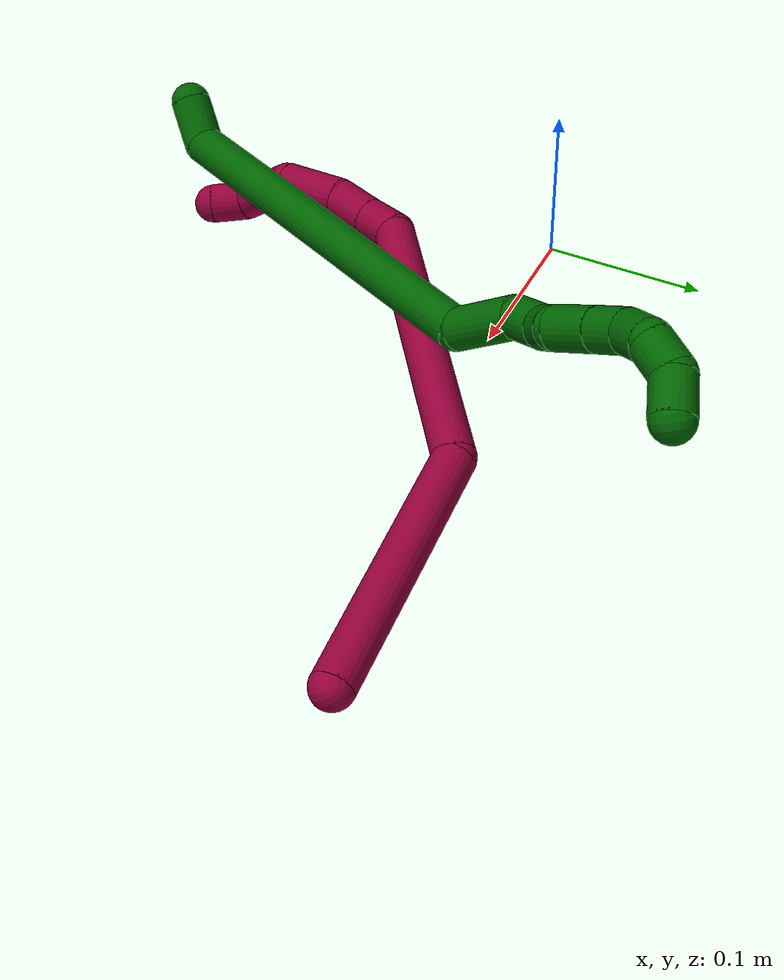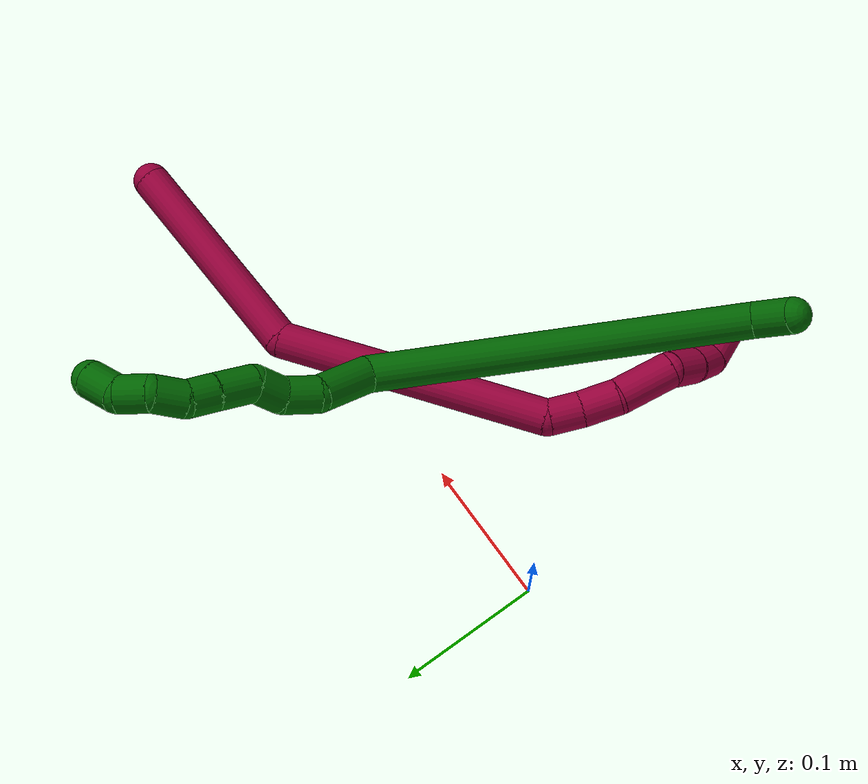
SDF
<sdf version="1.7">
 <world name="default">
  <model name="photoneo_s_sensor">
   <static>1</static>
   <pose>0 0 2 1.57079 1.57079 3.14159</pose>
   <link name="link">
    <inertial><mass>0.1</mass></inertial>
    <sensor name="sensor" type="depth">
     <update_rate>30</update_rate>
     <camera>
      <horizontal_fov>1.22</horizontal_fov>
      <image><width>1920</width><height>1200</height><format>B8G8R8</format></image>
      <clip><near>0.1</near><far>4</far></clip>
      <depth_camera><output>points</output></depth_camera>
     </camera>
     <plugin name="camera_plugin" filename="libgazebo_ros_depth_camera.so">
      <baseline>0.2</baseline>
      <alwaysOn>1</alwaysOn>
      <updateRate>0.0</updateRate>
      <cameraName>camera_ir</cameraName>
      <imageTopicName>/camera/color/image_raw</imageTopicName>
      <cameraInfoTopicName>/camera/color/camera_info</cameraInfoTopicName>
      <depthImageTopicName>/camera/depth/image_raw</depthImageTopicName>
      <depthImageCameraInfoTopicName>/camera/depth/camera_info</depthImageCameraInfoTopicName>
      <pointCloudTopicName>/camera/depth/points</pointCloudTopicName>
      <frameName>fr_optical</frameName>
      <pointCloudCutoff>0.1</pointCloudCutoff>
      <pointCloudCutoffMax>2.0</pointCloudCutoffMax>
      <distortionK1>0</distortionK1>
      <distortionK2>0</distortionK2>
      <distortionK3>0</distortionK3>
      <distortionT1>0</distortionT1>
      <distortionT2>0</distortionT2>
      <CxPrime>0</CxPrime>
      <Cx>0</Cx>
      <Cy>0</Cy>
      <focalLength>0</focalLength>
      <hackBaseline>0</hackBaseline>
     </plugin>
    </sensor>
   </link>
  </model>
  <model name="bin">
   <static>1</static>
   <link name="bottom">
    <collision name="collision-bottom">
     <pose>0 0 -0.01 0 -0 0</pose>
     <geometry><box><size>0.8 0.6 0.02</size></box></geometry>
     <surface>
      <friction><ode><mu>100</mu><mu2>100</mu2></ode></friction>
      <contact><collide_bitmask>65535</collide_bitmask></contact>
     </surface>
    </collision>
   </link>
   <link name="west_wall">
    <collision name="collision-west_wall">
     <pose>-0.41 0 0.1 0 -0 0</pose>
     <geometry><box><size>0.02 0.6 0.2</size></box></geometry>
     <surface>
      <friction><ode><mu>100</mu><mu2>100</mu2></ode></friction>
      <contact><collide_bitmask>65535</collide_bitmask></contact>
     </surface>
    </collision>
   </link>
   <link name="east_wall">
    <collision name="collision-east_wall">
     <pose>0.41 0 0.1 0 -0 0</pose>
     <geometry><box><size>0.02 0.6 0.2</size></box></geometry>
     <surface>
      <friction><ode><mu>100</mu><mu2>100</mu2></ode></friction>
      <contact><collide_bitmask>65535</collide_bitmask></contact>
     </surface>
    </collision>
   </link>
   <link name="south_wall">
    <collision name="collision-south_wall">
     <pose>0 -0.31 0.1 0 -0 0</pose>
     <geometry><box><size>0.8 0.02 0.2</size></box></geometry>
     <surface>
      <friction><ode><mu>100</mu><mu2>100</mu2></ode></friction>
      <contact><collide_bitmask>65535</collide_bitmask></contact>
     </surface>
    </collision>
   </link>
   <link name="north_wall">
    <collision name="collision-north_wall">
     <pose>0 0.31 0.1 0 -0 0</pose>
     <geometry><box><size>0.8 0.02 0.2</size></box></geometry>
     <surface>
      <friction><ode><mu>100</mu><mu2>100</mu2></ode></friction>
      <contact><collide_bitmask>65535</collide_bitmask></contact>
     </surface>
    </collision>
   </link>
  </model>
  <model name="6">
   <static>0</static>
   <link name="6">
    <collision name="collision-cylinder-e_1_1_4">
     <pose>0.001685 0.003509 0.014563 -0.236422 0.11201 -0.013317</pose>
     <geometry><cylinder><radius>0.0125</radius><length>0.030148</length></cylinder></geometry>
     <surface>
      <friction><ode><mu>1.16</mu><mu2>1.16</mu2><slip1>0</slip1><slip2>0</slip2></ode></friction>
      <contact><ode><kp>1e+06</kp><kd>1</kd><max_vel>0</max_vel><min_depth>0.001</min_depth></ode></contact>
     </surface>
    </collision>
    <visual name="visual-cylinder-e_1_1_4">
     <pose>0.001685 0.003509 0.014563 -0.236422 0.11201 -0.013317</pose>
     <geometry><cylinder><radius>0.0125</radius><length>0.030148</length></cylinder></geometry>
     <material><ambient>0 0.392157 0.003922 1</ambient></material>
    </visual>
    <collision name="collision-cylinder-e_2_4_5">
     <pose>0.060223 0.102806 0.09842 -0.944531 0.448237 -0.231836</pose>
     <geometry><cylinder><radius>0.0125</radius><length>0.262371</length></cylinder></geometry>
     <surface>
      <friction><ode><mu>1.16</mu><mu2>1.16</mu2><slip1>0</slip1><slip2>0</slip2></ode></friction>
      <contact><ode><kp>1e+06</kp><kd>1</kd><max_vel>0</max_vel><min_depth>0.001</min_depth></ode></contact>
     </surface>
    </collision>
    <visual name="visual-cylinder-e_2_4_5">
     <pose>0.060223 0.102806 0.09842 -0.944531 0.448237 -0.231836</pose>
     <geometry><cylinder><radius>0.0125</radius><length>0.262371</length></cylinder></geometry>
     <material><ambient>0 0.392157 0.003922 1</ambient></material>
    </visual>
    <collision name="collision-cylinder-e_3_5_6">
     <pose>0.131556 0.214581 0.166495 -1.64702 0.734625 -0.787218</pose>
     <geometry><cylinder><radius>0.0125</radius><length>0.043207</length></cylinder></geometry>
     <surface>
      <friction><ode><mu>1.16</mu><mu2>1.16</mu2><slip1>0</slip1><slip2>0</slip2></ode></friction>
      <contact><ode><kp>1e+06</kp><kd>1</kd><max_vel>0</max_vel><min_depth>0.001</min_depth></ode></contact>
     </surface>
    </collision>
    <visual name="visual-cylinder-e_3_5_6">
     <pose>0.131556 0.214581 0.166495 -1.64702 0.734625 -0.787218</pose>
     <geometry><cylinder><radius>0.0125</radius><length>0.043207</length></cylinder></geometry>
     <material><ambient>0 0.392157 0.003922 1</ambient></material>
    </visual>
    <collision name="collision-cylinder-e_4_6_7">
     <pose>0.150936 0.241343 0.168864 -1.24927 0.407174 -0.295499</pose>
     <geometry><cylinder><radius>0.0125</radius><length>0.024741</length></cylinder></geometry>
     <surface>
      <friction><ode><mu>1.16</mu><mu2>1.16</mu2><slip1>0</slip1><slip2>0</slip2></ode></friction>
      <contact><ode><kp>1e+06</kp><kd>1</kd><max_vel>0</max_vel><min_depth>0.001</min_depth></ode></contact>
     </surface>
    </collision>
    <visual name="visual-cylinder-e_4_6_7">
     <pose>0.150936 0.241343 0.168864 -1.24927 0.407174 -0.295499</pose>
     <geometry><cylinder><radius>0.0125</radius><length>0.024741</length></cylinder></geometry>
     <material><ambient>0 0.392157 0.003922 1</ambient></material>
    </visual>
    <collision name="collision-cylinder-e_5_7_8">
     <pose>0.156507 0.263248 0.172432 -1.57268 0.060305 -0.060418</pose>
     <geometry><cylinder><radius>0.0125</radius><length>0.022297</length></cylinder></geometry>
     <surface>
      <friction><ode><mu>1.16</mu><mu2>1.16</mu2><slip1>0</slip1><slip2>0</slip2></ode></friction>
      <contact><ode><kp>1e+06</kp><kd>1</kd><max_vel>0</max_vel><min_depth>0.001</min_depth></ode></contact>
     </surface>
    </collision>
    <visual name="visual-cylinder-e_5_7_8">
     <pose>0.156507 0.263248 0.172432 -1.57268 0.060305 -0.060418</pose>
     <geometry><cylinder><radius>0.0125</radius><length>0.022297</length></cylinder></geometry>
     <material><ambient>0 0.392157 0.003922 1</ambient></material>
    </visual>
    <collision name="collision-cylinder-e_6_8_9">
     <pose>0.165326 0.285802 0.17401 -1.43178 0.614862 -0.538901</pose>
     <geometry><cylinder><radius>0.0125</radius><length>0.028248</length></cylinder></geometry>
     <surface>
      <friction><ode><mu>1.16</mu><mu2>1.16</mu2><slip1>0</slip1><slip2>0</slip2></ode></friction>
      <contact><ode><kp>1e+06</kp><kd>1</kd><max_vel>0</max_vel><min_depth>0.001</min_depth></ode></contact>
     </surface>
    </collision>
    <visual name="visual-cylinder-e_6_8_9">
     <pose>0.165326 0.285802 0.17401 -1.43178 0.614862 -0.538901</pose>
     <geometry><cylinder><radius>0.0125</radius><length>0.028248</length></cylinder></geometry>
     <material><ambient>0 0.392157 0.003922 1</ambient></material>
    </visual>
    <collision name="collision-cylinder-e_7_9_10">
     <pose>0.179433 0.305337 0.176913 -1.41127 0.627682 -0.53956</pose>
     <geometry><cylinder><radius>0.0125</radius><length>0.020296</length></cylinder></geometry>
     <surface>
      <friction><ode><mu>1.16</mu><mu2>1.16</mu2><slip1>0</slip1><slip2>0</slip2></ode></friction>
      <contact><ode><kp>1e+06</kp><kd>1</kd><max_vel>0</max_vel><min_depth>0.001</min_depth></ode></contact>
     </surface>
    </collision>
    <visual name="visual-cylinder-e_7_9_10">
     <pose>0.179433 0.305337 0.176913 -1.41127 0.627682 -0.53956</pose>
     <geometry><cylinder><radius>0.0125</radius><length>0.020296</length></cylinder></geometry>
     <material><ambient>0 0.392157 0.003922 1</ambient></material>
    </visual>
    <collision name="collision-cylinder-e_8_10_11">
     <pose>0.187856 0.324131 0.181021 -1.31426 0.219405 -0.16955</pose>
     <geometry><cylinder><radius>0.0125</radius><length>0.022635</length></cylinder></geometry>
     <surface>
      <friction><ode><mu>1.16</mu><mu2>1.16</mu2><slip1>0</slip1><slip2>0</slip2></ode></friction>
      <contact><ode><kp>1e+06</kp><kd>1</kd><max_vel>0</max_vel><min_depth>0.001</min_depth></ode></contact>
     </surface>
    </collision>
    <visual name="visual-cylinder-e_8_10_11">
     <pose>0.187856 0.324131 0.181021 -1.31426 0.219405 -0.16955</pose>
     <geometry><cylinder><radius>0.0125</radius><length>0.022635</length></cylinder></geometry>
     <material><ambient>0 0.392157 0.003922 1</ambient></material>
    </visual>
    <collision name="collision-cylinder-e_9_11_12">
     <pose>0.192934 0.341517 0.191939 -0.69019 0.243505 -0.087914</pose>
     <geometry><cylinder><radius>0.0125</radius><length>0.021688</length></cylinder></geometry>
     <surface>
      <friction><ode><mu>1.16</mu><mu2>1.16</mu2><slip1>0</slip1><slip2>0</slip2></ode></friction>
      <contact><ode><kp>1e+06</kp><kd>1</kd><max_vel>0</max_vel><min_depth>0.001</min_depth></ode></contact>
     </surface>
    </collision>
    <visual name="visual-cylinder-e_9_11_12">
     <pose>0.192934 0.341517 0.191939 -0.69019 0.243505 -0.087914</pose>
     <geometry><cylinder><radius>0.0125</radius><length>0.021688</length></cylinder></geometry>
     <material><ambient>0 0.392157 0.003922 1</ambient></material>
    </visual>
    <collision name="collision-cylinder-e_10_12_2">
     <pose>0.19196 0.353702 0.210327 -0.490411 -0.298863 0.075314</pose>
     <geometry><cylinder><radius>0.0125</radius><length>0.02437</length></cylinder></geometry>
     <surface>
      <friction><ode><mu>1.16</mu><mu2>1.16</mu2><slip1>0</slip1><slip2>0</slip2></ode></friction>
      <contact><ode><kp>1e+06</kp><kd>1</kd><max_vel>0</max_vel><min_depth>0.001</min_depth></ode></contact>
     </surface>
    </collision>
    <visual name="visual-cylinder-e_10_12_2">
     <pose>0.19196 0.353702 0.210327 -0.490411 -0.298863 0.075314</pose>
     <geometry><cylinder><radius>0.0125</radius><length>0.02437</length></cylinder></geometry>
     <material><ambient>0 0.392157 0.003922 1</ambient></material>
    </visual>
    <collision name="collision-sphere-2">
     <pose>0.188373 0.359186 0.220599 0 -0 0</pose>
     <geometry><sphere><radius>0.0125</radius></sphere></geometry>
     <surface>
      <friction><ode><mu>1.16</mu><mu2>1.16</mu2><slip1>0</slip1><slip2>0</slip2></ode></friction>
      <contact><ode><kp>1e+06</kp><kd>1</kd><max_vel>0</max_vel><min_depth>0.001</min_depth></ode></contact>
     </surface>
    </collision>
    <visual name="visual-sphere-2">
     <pose>0.188373 0.359186 0.220599 0 -0 0</pose>
     <geometry><sphere><radius>0.0125</radius></sphere></geometry>
     <material><ambient>0 0.392157 0.003922 1</ambient></material>
    </visual>
    <collision name="collision-sphere-12">
     <pose>0.195548 0.348217 0.200054 0 -0 0</pose>
     <geometry><sphere><radius>0.0125</radius></sphere></geometry>
     <surface>
      <friction><ode><mu>1.16</mu><mu2>1.16</mu2><slip1>0</slip1><slip2>0</slip2></ode></friction>
      <contact><ode><kp>1e+06</kp><kd>1</kd><max_vel>0</max_vel><min_depth>0.001</min_depth></ode></contact>
     </surface>
    </collision>
    <visual name="visual-sphere-12">
     <pose>0.195548 0.348217 0.200054 0 -0 0</pose>
     <geometry><sphere><radius>0.0125</radius></sphere></geometry>
     <material><ambient>0 0.392157 0.003922 1</ambient></material>
    </visual>
    <collision name="collision-sphere-11">
     <pose>0.190319 0.334816 0.183824 0 -0 0</pose>
     <geometry><sphere><radius>0.0125</radius></sphere></geometry>
     <surface>
      <friction><ode><mu>1.16</mu><mu2>1.16</mu2><slip1>0</slip1><slip2>0</slip2></ode></friction>
      <contact><ode><kp>1e+06</kp><kd>1</kd><max_vel>0</max_vel><min_depth>0.001</min_depth></ode></contact>
     </surface>
    </collision>
    <visual name="visual-sphere-11">
     <pose>0.190319 0.334816 0.183824 0 -0 0</pose>
     <geometry><sphere><radius>0.0125</radius></sphere></geometry>
     <material><ambient>0 0.392157 0.003922 1</ambient></material>
    </visual>
    <collision name="collision-sphere-10">
     <pose>0.185393 0.313447 0.178218 0 -0 0</pose>
     <geometry><sphere><radius>0.0125</radius></sphere></geometry>
     <surface>
      <friction><ode><mu>1.16</mu><mu2>1.16</mu2><slip1>0</slip1><slip2>0</slip2></ode></friction>
      <contact><ode><kp>1e+06</kp><kd>1</kd><max_vel>0</max_vel><min_depth>0.001</min_depth></ode></contact>
     </surface>
    </collision>
    <visual name="visual-sphere-10">
     <pose>0.185393 0.313447 0.178218 0 -0 0</pose>
     <geometry><sphere><radius>0.0125</radius></sphere></geometry>
     <material><ambient>0 0.392157 0.003922 1</ambient></material>
    </visual>
    <collision name="collision-sphere-9">
     <pose>0.173474 0.297228 0.175609 0 -0 0</pose>
     <geometry><sphere><radius>0.0125</radius></sphere></geometry>
     <surface>
      <friction><ode><mu>1.16</mu><mu2>1.16</mu2><slip1>0</slip1><slip2>0</slip2></ode></friction>
      <contact><ode><kp>1e+06</kp><kd>1</kd><max_vel>0</max_vel><min_depth>0.001</min_depth></ode></contact>
     </surface>
    </collision>
    <visual name="visual-sphere-9">
     <pose>0.173474 0.297228 0.175609 0 -0 0</pose>
     <geometry><sphere><radius>0.0125</radius></sphere></geometry>
     <material><ambient>0 0.392157 0.003922 1</ambient></material>
    </visual>
    <collision name="collision-sphere-4">
     <pose>0.00337 0.007017 0.029126 0 -0 0</pose>
     <geometry><sphere><radius>0.0125</radius></sphere></geometry>
     <surface>
      <friction><ode><mu>1.16</mu><mu2>1.16</mu2><slip1>0</slip1><slip2>0</slip2></ode></friction>
      <contact><ode><kp>1e+06</kp><kd>1</kd><max_vel>0</max_vel><min_depth>0.001</min_depth></ode></contact>
     </surface>
    </collision>
    <visual name="visual-sphere-4">
     <pose>0.00337 0.007017 0.029126 0 -0 0</pose>
     <geometry><sphere><radius>0.0125</radius></sphere></geometry>
     <material><ambient>0 0.392157 0.003922 1</ambient></material>
    </visual>
    <collision name="collision-sphere-1">
     <geometry><sphere><radius>0.0125</radius></sphere></geometry>
     <surface>
      <friction><ode><mu>1.16</mu><mu2>1.16</mu2><slip1>0</slip1><slip2>0</slip2></ode></friction>
      <contact><ode><kp>1e+06</kp><kd>1</kd><max_vel>0</max_vel><min_depth>0.001</min_depth></ode></contact>
     </surface>
    </collision>
    <visual name="visual-sphere-1">
     <geometry><sphere><radius>0.0125</radius></sphere></geometry>
     <material><ambient>0 0.392157 0.003922 1</ambient></material>
    </visual>
    <collision name="collision-sphere-8">
     <pose>0.157179 0.274376 0.172411 0 -0 0</pose>
     <geometry><sphere><radius>0.0125</radius></sphere></geometry>
     <surface>
      <friction><ode><mu>1.16</mu><mu2>1.16</mu2><slip1>0</slip1><slip2>0</slip2></ode></friction>
      <contact><ode><kp>1e+06</kp><kd>1</kd><max_vel>0</max_vel><min_depth>0.001</min_depth></ode></contact>
     </surface>
    </collision>
    <visual name="visual-sphere-8">
     <pose>0.157179 0.274376 0.172411 0 -0 0</pose>
     <geometry><sphere><radius>0.0125</radius></sphere></geometry>
     <material><ambient>0 0.392157 0.003922 1</ambient></material>
    </visual>
    <collision name="collision-sphere-5">
     <pose>0.117075 0.198596 0.167715 0 -0 0</pose>
     <geometry><sphere><radius>0.0125</radius></sphere></geometry>
     <surface>
      <friction><ode><mu>1.16</mu><mu2>1.16</mu2><slip1>0</slip1><slip2>0</slip2></ode></friction>
      <contact><ode><kp>1e+06</kp><kd>1</kd><max_vel>0</max_vel><min_depth>0.001</min_depth></ode></contact>
     </surface>
    </collision>
    <visual name="visual-sphere-5">
     <pose>0.117075 0.198596 0.167715 0 -0 0</pose>
     <geometry><sphere><radius>0.0125</radius></sphere></geometry>
     <material><ambient>0 0.392157 0.003922 1</ambient></material>
    </visual>
    <collision name="collision-sphere-6">
     <pose>0.146037 0.230566 0.165274 0 -0 0</pose>
     <geometry><sphere><radius>0.0125</radius></sphere></geometry>
     <surface>
      <friction><ode><mu>1.16</mu><mu2>1.16</mu2><slip1>0</slip1><slip2>0</slip2></ode></friction>
      <contact><ode><kp>1e+06</kp><kd>1</kd><max_vel>0</max_vel><min_depth>0.001</min_depth></ode></contact>
     </surface>
    </collision>
    <visual name="visual-sphere-6">
     <pose>0.146037 0.230566 0.165274 0 -0 0</pose>
     <geometry><sphere><radius>0.0125</radius></sphere></geometry>
     <material><ambient>0 0.392157 0.003922 1</ambient></material>
    </visual>
    <collision name="collision-sphere-7">
     <pose>0.155835 0.25212 0.172453 0 -0 0</pose>
     <geometry><sphere><radius>0.0125</radius></sphere></geometry>
     <surface>
      <friction><ode><mu>1.16</mu><mu2>1.16</mu2><slip1>0</slip1><slip2>0</slip2></ode></friction>
      <contact><ode><kp>1e+06</kp><kd>1</kd><max_vel>0</max_vel><min_depth>0.001</min_depth></ode></contact>
     </surface>
    </collision>
    <visual name="visual-sphere-7">
     <pose>0.155835 0.25212 0.172453 0 -0 0</pose>
     <geometry><sphere><radius>0.0125</radius></sphere></geometry>
     <material><ambient>0 0.392157 0.003922 1</ambient></material>
    </visual>
    <inertial>
     <pose>0.100372 0.17165 0.12674 0 -0 0</pose>
     <mass>0.5</mass>
     <inertia>
      <ixx>0.001043</ixx>
      <ixy>0</ixy>
      <ixz>0</ixz>
      <iyy>0.000707</iyy>
      <iyz>0</iyz>
      <izz>-0.001774</izz>
     </inertia>
    </inertial>
   </link>
   <pose>0.037786 -0.242842 0.066575 2.47113 -0.055741 2.23135</pose>
  </model>
  <model name="8">
   <static>0</static>
   <link name="8">
    <collision name="collision-cylinder-e_1_1_4">
     <pose>-0.023884 -0.072698 -0.011874 1.7327 -0.313543 -0.367759</pose>
     <geometry><cylinder><radius>0.0125</radius><length>0.154874</length></cylinder></geometry>
     <surface>
      <friction><ode><mu>1.16</mu><mu2>1.16</mu2><slip1>0</slip1><slip2>0</slip2></ode></friction>
      <contact><ode><kp>1e+06</kp><kd>1</kd><max_vel>0</max_vel><min_depth>0.001</min_depth></ode></contact>
     </surface>
    </collision>
    <visual name="visual-cylinder-e_1_1_4">
     <pose>-0.023884 -0.072698 -0.011874 1.7327 -0.313543 -0.367759</pose>
     <geometry><cylinder><radius>0.0125</radius><length>0.154874</length></cylinder></geometry>
     <material><ambient>0.584314 0 0.227451 1</ambient></material>
    </visual>
    <collision name="collision-cylinder-e_2_4_5">
     <pose>-0.101863 -0.215904 0.007855 1.14943 -0.610808 -0.402824</pose>
     <geometry><cylinder><radius>0.0125</radius><length>0.188641</length></cylinder></geometry>
     <surface>
      <friction><ode><mu>1.16</mu><mu2>1.16</mu2><slip1>0</slip1><slip2>0</slip2></ode></friction>
      <contact><ode><kp>1e+06</kp><kd>1</kd><max_vel>0</max_vel><min_depth>0.001</min_depth></ode></contact>
     </surface>
    </collision>
    <visual name="visual-cylinder-e_2_4_5">
     <pose>-0.101863 -0.215904 0.007855 1.14943 -0.610808 -0.402824</pose>
     <geometry><cylinder><radius>0.0125</radius><length>0.188641</length></cylinder></geometry>
     <material><ambient>0.584314 0 0.227451 1</ambient></material>
    </visual>
    <collision name="collision-cylinder-e_3_5_6">
     <pose>-0.163019 -0.290134 0.04789 0.415611 -0.653566 -0.142686</pose>
     <geometry><cylinder><radius>0.0125</radius><length>0.023221</length></cylinder></geometry>
     <surface>
      <friction><ode><mu>1.16</mu><mu2>1.16</mu2><slip1>0</slip1><slip2>0</slip2></ode></friction>
      <contact><ode><kp>1e+06</kp><kd>1</kd><max_vel>0</max_vel><min_depth>0.001</min_depth></ode></contact>
     </surface>
    </collision>
    <visual name="visual-cylinder-e_3_5_6">
     <pose>-0.163019 -0.290134 0.04789 0.415611 -0.653566 -0.142686</pose>
     <geometry><cylinder><radius>0.0125</radius><length>0.023221</length></cylinder></geometry>
     <material><ambient>0.584314 0 0.227451 1</ambient></material>
    </visual>
    <collision name="collision-cylinder-e_4_6_7">
     <pose>-0.179312 -0.297062 0.065127 0.349262 -0.778132 -0.144406</pose>
     <geometry><cylinder><radius>0.0125</radius><length>0.026309</length></cylinder></geometry>
     <surface>
      <friction><ode><mu>1.16</mu><mu2>1.16</mu2><slip1>0</slip1><slip2>0</slip2></ode></friction>
      <contact><ode><kp>1e+06</kp><kd>1</kd><max_vel>0</max_vel><min_depth>0.001</min_depth></ode></contact>
     </surface>
    </collision>
    <visual name="visual-cylinder-e_4_6_7">
     <pose>-0.179312 -0.297062 0.065127 0.349262 -0.778132 -0.144406</pose>
     <geometry><cylinder><radius>0.0125</radius><length>0.026309</length></cylinder></geometry>
     <material><ambient>0.584314 0 0.227451 1</ambient></material>
    </visual>
    <collision name="collision-cylinder-e_5_7_8">
     <pose>-0.199996 -0.302153 0.09026 0.114914 -0.608392 -0.036112</pose>
     <geometry><cylinder><radius>0.0125</radius><length>0.040066</length></cylinder></geometry>
     <surface>
      <friction><ode><mu>1.16</mu><mu2>1.16</mu2><slip1>0</slip1><slip2>0</slip2></ode></friction>
      <contact><ode><kp>1e+06</kp><kd>1</kd><max_vel>0</max_vel><min_depth>0.001</min_depth></ode></contact>
     </surface>
    </collision>
    <visual name="visual-cylinder-e_5_7_8">
     <pose>-0.199996 -0.302153 0.09026 0.114914 -0.608392 -0.036112</pose>
     <geometry><cylinder><radius>0.0125</radius><length>0.040066</length></cylinder></geometry>
     <material><ambient>0.584314 0 0.227451 1</ambient></material>
    </visual>
    <collision name="collision-cylinder-e_6_8_9">
     <pose>-0.21179 -0.307274 0.118131 0.273451 -0.02874 -0.003954</pose>
     <geometry><cylinder><radius>0.0125</radius><length>0.023983</length></cylinder></geometry>
     <surface>
      <friction><ode><mu>1.16</mu><mu2>1.16</mu2><slip1>0</slip1><slip2>0</slip2></ode></friction>
      <contact><ode><kp>1e+06</kp><kd>1</kd><max_vel>0</max_vel><min_depth>0.001</min_depth></ode></contact>
     </surface>
    </collision>
    <visual name="visual-cylinder-e_6_8_9">
     <pose>-0.21179 -0.307274 0.118131 0.273451 -0.02874 -0.003954</pose>
     <geometry><cylinder><radius>0.0125</radius><length>0.023983</length></cylinder></geometry>
     <material><ambient>0.584314 0 0.227451 1</ambient></material>
    </visual>
    <collision name="collision-cylinder-e_7_9_10">
     <pose>-0.212166 -0.311869 0.139863 0.132445 -0.003061 -0.000203</pose>
     <geometry><cylinder><radius>0.0125</radius><length>0.020561</length></cylinder></geometry>
     <surface>
      <friction><ode><mu>1.16</mu><mu2>1.16</mu2><slip1>0</slip1><slip2>0</slip2></ode></friction>
      <contact><ode><kp>1e+06</kp><kd>1</kd><max_vel>0</max_vel><min_depth>0.001</min_depth></ode></contact>
     </surface>
    </collision>
    <visual name="visual-cylinder-e_7_9_10">
     <pose>-0.212166 -0.311869 0.139863 0.132445 -0.003061 -0.000203</pose>
     <geometry><cylinder><radius>0.0125</radius><length>0.020561</length></cylinder></geometry>
     <material><ambient>0.584314 0 0.227451 1</ambient></material>
    </visual>
    <collision name="collision-cylinder-e_8_10_2">
     <pose>-0.216383 -0.308724 0.159382 -0.449699 -0.383965 0.088856</pose>
     <geometry><cylinder><radius>0.0125</radius><length>0.022345</length></cylinder></geometry>
     <surface>
      <friction><ode><mu>1.16</mu><mu2>1.16</mu2><slip1>0</slip1><slip2>0</slip2></ode></friction>
      <contact><ode><kp>1e+06</kp><kd>1</kd><max_vel>0</max_vel><min_depth>0.001</min_depth></ode></contact>
     </surface>
    </collision>
    <visual name="visual-cylinder-e_8_10_2">
     <pose>-0.216383 -0.308724 0.159382 -0.449699 -0.383965 0.088856</pose>
     <geometry><cylinder><radius>0.0125</radius><length>0.022345</length></cylinder></geometry>
     <material><ambient>0.584314 0 0.227451 1</ambient></material>
    </visual>
    <collision name="collision-sphere-2">
     <pose>-0.220568 -0.304221 0.168711 0 -0 0</pose>
     <geometry><sphere><radius>0.0125</radius></sphere></geometry>
     <surface>
      <friction><ode><mu>1.16</mu><mu2>1.16</mu2><slip1>0</slip1><slip2>0</slip2></ode></friction>
      <contact><ode><kp>1e+06</kp><kd>1</kd><max_vel>0</max_vel><min_depth>0.001</min_depth></ode></contact>
     </surface>
    </collision>
    <visual name="visual-sphere-2">
     <pose>-0.220568 -0.304221 0.168711 0 -0 0</pose>
     <geometry><sphere><radius>0.0125</radius></sphere></geometry>
     <material><ambient>0.584314 0 0.227451 1</ambient></material>
    </visual>
    <collision name="collision-sphere-10">
     <pose>-0.212198 -0.313227 0.150053 0 -0 0</pose>
     <geometry><sphere><radius>0.0125</radius></sphere></geometry>
     <surface>
      <friction><ode><mu>1.16</mu><mu2>1.16</mu2><slip1>0</slip1><slip2>0</slip2></ode></friction>
      <contact><ode><kp>1e+06</kp><kd>1</kd><max_vel>0</max_vel><min_depth>0.001</min_depth></ode></contact>
     </surface>
    </collision>
    <visual name="visual-sphere-10">
     <pose>-0.212198 -0.313227 0.150053 0 -0 0</pose>
     <geometry><sphere><radius>0.0125</radius></sphere></geometry>
     <material><ambient>0.584314 0 0.227451 1</ambient></material>
    </visual>
    <collision name="collision-sphere-9">
     <pose>-0.212135 -0.310511 0.129672 0 -0 0</pose>
     <geometry><sphere><radius>0.0125</radius></sphere></geometry>
     <surface>
      <friction><ode><mu>1.16</mu><mu2>1.16</mu2><slip1>0</slip1><slip2>0</slip2></ode></friction>
      <contact><ode><kp>1e+06</kp><kd>1</kd><max_vel>0</max_vel><min_depth>0.001</min_depth></ode></contact>
     </surface>
    </collision>
    <visual name="visual-sphere-9">
     <pose>-0.212135 -0.310511 0.129672 0 -0 0</pose>
     <geometry><sphere><radius>0.0125</radius></sphere></geometry>
     <material><ambient>0.584314 0 0.227451 1</ambient></material>
    </visual>
    <collision name="collision-sphere-4">
     <pose>-0.047768 -0.145397 -0.023747 0 -0 0</pose>
     <geometry><sphere><radius>0.0125</radius></sphere></geometry>
     <surface>
      <friction><ode><mu>1.16</mu><mu2>1.16</mu2><slip1>0</slip1><slip2>0</slip2></ode></friction>
      <contact><ode><kp>1e+06</kp><kd>1</kd><max_vel>0</max_vel><min_depth>0.001</min_depth></ode></contact>
     </surface>
    </collision>
    <visual name="visual-sphere-4">
     <pose>-0.047768 -0.145397 -0.023747 0 -0 0</pose>
     <geometry><sphere><radius>0.0125</radius></sphere></geometry>
     <material><ambient>0.584314 0 0.227451 1</ambient></material>
    </visual>
    <collision name="collision-sphere-1">
     <geometry><sphere><radius>0.0125</radius></sphere></geometry>
     <surface>
      <friction><ode><mu>1.16</mu><mu2>1.16</mu2><slip1>0</slip1><slip2>0</slip2></ode></friction>
      <contact><ode><kp>1e+06</kp><kd>1</kd><max_vel>0</max_vel><min_depth>0.001</min_depth></ode></contact>
     </surface>
    </collision>
    <visual name="visual-sphere-1">
     <geometry><sphere><radius>0.0125</radius></sphere></geometry>
     <material><ambient>0.584314 0 0.227451 1</ambient></material>
    </visual>
    <collision name="collision-sphere-8">
     <pose>-0.211445 -0.304037 0.10659 0 -0 0</pose>
     <geometry><sphere><radius>0.0125</radius></sphere></geometry>
     <surface>
      <friction><ode><mu>1.16</mu><mu2>1.16</mu2><slip1>0</slip1><slip2>0</slip2></ode></friction>
      <contact><ode><kp>1e+06</kp><kd>1</kd><max_vel>0</max_vel><min_depth>0.001</min_depth></ode></contact>
     </surface>
    </collision>
    <visual name="visual-sphere-8">
     <pose>-0.211445 -0.304037 0.10659 0 -0 0</pose>
     <geometry><sphere><radius>0.0125</radius></sphere></geometry>
     <material><ambient>0.584314 0 0.227451 1</ambient></material>
    </visual>
    <collision name="collision-sphere-5">
     <pose>-0.155959 -0.286412 0.039457 0 -0 0</pose>
     <geometry><sphere><radius>0.0125</radius></sphere></geometry>
     <surface>
      <friction><ode><mu>1.16</mu><mu2>1.16</mu2><slip1>0</slip1><slip2>0</slip2></ode></friction>
      <contact><ode><kp>1e+06</kp><kd>1</kd><max_vel>0</max_vel><min_depth>0.001</min_depth></ode></contact>
     </surface>
    </collision>
    <visual name="visual-sphere-5">
     <pose>-0.155959 -0.286412 0.039457 0 -0 0</pose>
     <geometry><sphere><radius>0.0125</radius></sphere></geometry>
     <material><ambient>0.584314 0 0.227451 1</ambient></material>
    </visual>
    <collision name="collision-sphere-6">
     <pose>-0.170078 -0.293856 0.056324 0 -0 0</pose>
     <geometry><sphere><radius>0.0125</radius></sphere></geometry>
     <surface>
      <friction><ode><mu>1.16</mu><mu2>1.16</mu2><slip1>0</slip1><slip2>0</slip2></ode></friction>
      <contact><ode><kp>1e+06</kp><kd>1</kd><max_vel>0</max_vel><min_depth>0.001</min_depth></ode></contact>
     </surface>
    </collision>
    <visual name="visual-sphere-6">
     <pose>-0.170078 -0.293856 0.056324 0 -0 0</pose>
     <geometry><sphere><radius>0.0125</radius></sphere></geometry>
     <material><ambient>0.584314 0 0.227451 1</ambient></material>
    </visual>
    <collision name="collision-sphere-7">
     <pose>-0.188546 -0.300268 0.07393 0 -0 0</pose>
     <geometry><sphere><radius>0.0125</radius></sphere></geometry>
     <surface>
      <friction><ode><mu>1.16</mu><mu2>1.16</mu2><slip1>0</slip1><slip2>0</slip2></ode></friction>
      <contact><ode><kp>1e+06</kp><kd>1</kd><max_vel>0</max_vel><min_depth>0.001</min_depth></ode></contact>
     </surface>
    </collision>
    <visual name="visual-sphere-7">
     <pose>-0.188546 -0.300268 0.07393 0 -0 0</pose>
     <geometry><sphere><radius>0.0125</radius></sphere></geometry>
     <material><ambient>0.584314 0 0.227451 1</ambient></material>
    </visual>
    <inertial>
     <pose>-0.107415 -0.198653 0.03071 0 -0 0</pose>
     <mass>0.5</mass>
     <inertia>
      <ixx>0.000414</ixx>
      <ixy>0</ixy>
      <ixz>0</ixz>
      <iyy>1.9e-05</iyy>
      <iyz>0</iyz>
      <izz>0.001165</izz>
     </inertia>
    </inertial>
   </link>
   <pose>0.38692 0.042678 0.012308 2.79971 0.866316 1.26511</pose>
  </model>
 </world>
</sdf>
